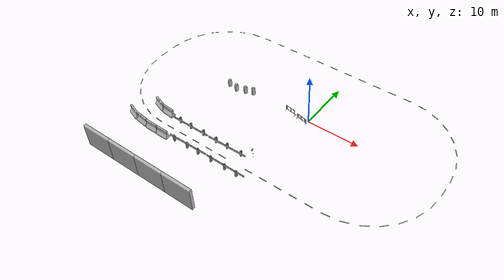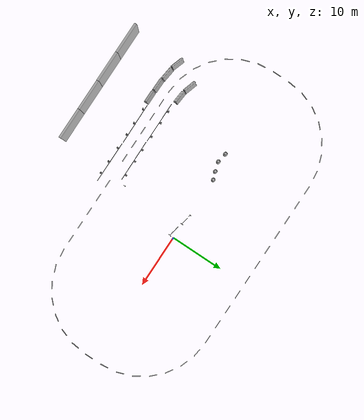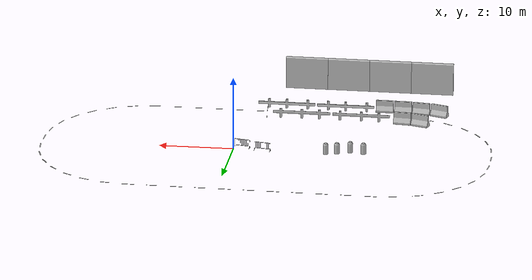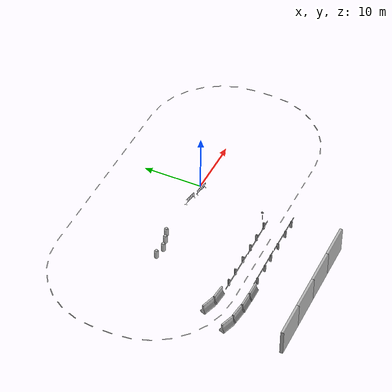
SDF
<sdf version="1.7">
 <world name="default">
  <model name="aws_robomaker_racetrack_CrashworthBucket_01_56">
   <frame name="aws_CrashworthBucket_01::__model__" attached_to="aws_CrashworthBucket_01::body">
    <pose relative_to="__model__">0 0 0 0 -0 0</pose>
   </frame>
   <link name="aws_CrashworthBucket_01::body">
    <pose relative_to="aws_CrashworthBucket_01::__model__">0 0 0 0 -0 0</pose>
    <inertial>
     <mass>5</mass>
     <inertia><ixx>1</ixx><ixy>0</ixy><ixz>0</ixz><iyy>1</iyy><iyz>0</iyz><izz>1</izz></inertia>
    </inertial>
    <visual name="visual">
     <geometry>
      <mesh>
       <uri>file://models/aws_robomaker_racetrack_CrashworthBucket_01/meshes/aws_CrashworthBucket_01_visual.DAE</uri>
      </mesh>
     </geometry>
     <material><shader type="pixel"><normal_map>__default__</normal_map></shader></material>
     <meta><layer>0</layer></meta>
    </visual>
    <collision name="collision_0">
     <geometry>
      <mesh>
       <uri>file://models/aws_robomaker_racetrack_CrashworthBucket_01/meshes/aws_CrashworthBucket_01_collision.DAE</uri>
       <scale>1 1 1</scale>
      </mesh>
     </geometry>
     <surface>
      <friction>
       <ode><mu>1</mu><mu2>1</mu2><fdir1>0 0 0</fdir1><slip1>0</slip1><slip2>0</slip2></ode>
       <torsional>
        <coefficient>1</coefficient>
        <patch_radius>0</patch_radius>
        <surface_radius>0</surface_radius>
        <use_patch_radius>1</use_patch_radius>
        <ode><slip>0</slip></ode>
       </torsional>
      </friction>
      <bounce><restitution_coefficient>0</restitution_coefficient><threshold>1e+06</threshold></bounce>
      <contact>
       <collide_without_contact>0</collide_without_contact>
       <collide_without_contact_bitmask>1</collide_without_contact_bitmask>
       <collide_bitmask>1</collide_bitmask>
       <ode>
        <soft_cfm>0</soft_cfm>
        <soft_erp>0.2</soft_erp>
        <kp>1e+13</kp>
        <kd>1</kd>
        <max_vel>0.01</max_vel>
        <min_depth>0</min_depth>
       </ode>
       <bullet>
        <split_impulse>1</split_impulse>
        <split_impulse_penetration_threshold>-0.01</split_impulse_penetration_threshold>
        <soft_cfm>0</soft_cfm>
        <soft_erp>0.2</soft_erp>
        <kp>1e+13</kp>
        <kd>1</kd>
       </bullet>
      </contact>
     </surface>
    </collision>
   </link>
   <static>1</static>
   <pose>-12.3589 0.164431 0.054 0 -0 0</pose>
  </model>
  <model name="aws_robomaker_racetrack_CrashworthBucket_01_60">
   <frame name="aws_CrashworthBucket_01::__model__" attached_to="aws_CrashworthBucket_01::body">
    <pose relative_to="__model__">0 0 0 0 -0 0</pose>
   </frame>
   <link name="aws_CrashworthBucket_01::body">
    <pose relative_to="aws_CrashworthBucket_01::__model__">0 0 0 0 -0 0</pose>
    <inertial>
     <mass>5</mass>
     <inertia><ixx>1</ixx><ixy>0</ixy><ixz>0</ixz><iyy>1</iyy><iyz>0</iyz><izz>1</izz></inertia>
    </inertial>
    <visual name="visual">
     <geometry>
      <mesh>
       <uri>file://models/aws_robomaker_racetrack_CrashworthBucket_01/meshes/aws_CrashworthBucket_01_visual.DAE</uri>
      </mesh>
     </geometry>
     <material><shader type="pixel"><normal_map>__default__</normal_map></shader></material>
     <meta><layer>0</layer></meta>
    </visual>
    <collision name="collision_0">
     <geometry>
      <mesh>
       <uri>file://models/aws_robomaker_racetrack_CrashworthBucket_01/meshes/aws_CrashworthBucket_01_collision.DAE</uri>
       <scale>1 1 1</scale>
      </mesh>
     </geometry>
     <surface>
      <friction>
       <ode><mu>1</mu><mu2>1</mu2><fdir1>0 0 0</fdir1><slip1>0</slip1><slip2>0</slip2></ode>
       <torsional>
        <coefficient>1</coefficient>
        <patch_radius>0</patch_radius>
        <surface_radius>0</surface_radius>
        <use_patch_radius>1</use_patch_radius>
        <ode><slip>0</slip></ode>
       </torsional>
      </friction>
      <bounce><restitution_coefficient>0</restitution_coefficient><threshold>1e+06</threshold></bounce>
      <contact>
       <collide_without_contact>0</collide_without_contact>
       <collide_without_contact_bitmask>1</collide_without_contact_bitmask>
       <collide_bitmask>1</collide_bitmask>
       <ode>
        <soft_cfm>0</soft_cfm>
        <soft_erp>0.2</soft_erp>
        <kp>1e+13</kp>
        <kd>1</kd>
        <max_vel>0.01</max_vel>
        <min_depth>0</min_depth>
       </ode>
       <bullet>
        <split_impulse>1</split_impulse>
        <split_impulse_penetration_threshold>-0.01</split_impulse_penetration_threshold>
        <soft_cfm>0</soft_cfm>
        <soft_erp>0.2</soft_erp>
        <kp>1e+13</kp>
        <kd>1</kd>
       </bullet>
      </contact>
     </surface>
    </collision>
   </link>
   <static>1</static>
   <pose>-13.795 -0.345202 0 0 -0 0.00632</pose>
  </model>
  <model name="aws_robomaker_racetrack_CrashworthBucket_01_62">
   <frame name="aws_CrashworthBucket_01::__model__" attached_to="aws_CrashworthBucket_01::body">
    <pose relative_to="__model__">0 0 0 0 -0 0</pose>
   </frame>
   <link name="aws_CrashworthBucket_01::body">
    <pose relative_to="aws_CrashworthBucket_01::__model__">0 0 0 0 -0 0</pose>
    <inertial>
     <mass>5</mass>
     <inertia><ixx>1</ixx><ixy>0</ixy><ixz>0</ixz><iyy>1</iyy><iyz>0</iyz><izz>1</izz></inertia>
    </inertial>
    <visual name="visual">
     <geometry>
      <mesh>
       <uri>file://models/aws_robomaker_racetrack_CrashworthBucket_01/meshes/aws_CrashworthBucket_01_visual.DAE</uri>
      </mesh>
     </geometry>
     <material><shader type="pixel"><normal_map>__default__</normal_map></shader></material>
     <meta><layer>0</layer></meta>
    </visual>
    <collision name="collision_0">
     <geometry>
      <mesh>
       <uri>file://models/aws_robomaker_racetrack_CrashworthBucket_01/meshes/aws_CrashworthBucket_01_collision.DAE</uri>
       <scale>1 1 1</scale>
      </mesh>
     </geometry>
     <surface>
      <friction>
       <ode><mu>1</mu><mu2>1</mu2><fdir1>0 0 0</fdir1><slip1>0</slip1><slip2>0</slip2></ode>
       <torsional>
        <coefficient>1</coefficient>
        <patch_radius>0</patch_radius>
        <surface_radius>0</surface_radius>
        <use_patch_radius>1</use_patch_radius>
        <ode><slip>0</slip></ode>
       </torsional>
      </friction>
      <bounce><restitution_coefficient>0</restitution_coefficient><threshold>1e+06</threshold></bounce>
      <contact>
       <collide_without_contact>0</collide_without_contact>
       <collide_without_contact_bitmask>1</collide_without_contact_bitmask>
       <collide_bitmask>1</collide_bitmask>
       <ode>
        <soft_cfm>0</soft_cfm>
        <soft_erp>0.2</soft_erp>
        <kp>1e+13</kp>
        <kd>1</kd>
        <max_vel>0.01</max_vel>
        <min_depth>0</min_depth>
       </ode>
       <bullet>
        <split_impulse>1</split_impulse>
        <split_impulse_penetration_threshold>-0.01</split_impulse_penetration_threshold>
        <soft_cfm>0</soft_cfm>
        <soft_erp>0.2</soft_erp>
        <kp>1e+13</kp>
        <kd>1</kd>
       </bullet>
      </contact>
     </surface>
    </collision>
   </link>
   <static>1</static>
   <pose>-17.3162 -0.564277 0.054 0 -0 0</pose>
  </model>
  <model name="aws_robomaker_racetrack_CrashworthBucket_01_63">
   <frame name="aws_CrashworthBucket_01::__model__" attached_to="aws_CrashworthBucket_01::body">
    <pose relative_to="__model__">0 0 0 0 -0 0</pose>
   </frame>
   <link name="aws_CrashworthBucket_01::body">
    <pose relative_to="aws_CrashworthBucket_01::__model__">0 0 0 0 -0 0</pose>
    <inertial>
     <mass>5</mass>
     <inertia><ixx>1</ixx><ixy>0</ixy><ixz>0</ixz><iyy>1</iyy><iyz>0</iyz><izz>1</izz></inertia>
    </inertial>
    <visual name="visual">
     <geometry>
      <mesh>
       <uri>file://models/aws_robomaker_racetrack_CrashworthBucket_01/meshes/aws_CrashworthBucket_01_visual.DAE</uri>
      </mesh>
     </geometry>
     <material><shader type="pixel"><normal_map>__default__</normal_map></shader></material>
     <meta><layer>0</layer></meta>
    </visual>
    <collision name="collision_0">
     <geometry>
      <mesh>
       <uri>file://models/aws_robomaker_racetrack_CrashworthBucket_01/meshes/aws_CrashworthBucket_01_collision.DAE</uri>
       <scale>1 1 1</scale>
      </mesh>
     </geometry>
     <surface>
      <friction>
       <ode><mu>1</mu><mu2>1</mu2><fdir1>0 0 0</fdir1><slip1>0</slip1><slip2>0</slip2></ode>
       <torsional>
        <coefficient>1</coefficient>
        <patch_radius>0</patch_radius>
        <surface_radius>0</surface_radius>
        <use_patch_radius>1</use_patch_radius>
        <ode><slip>0</slip></ode>
       </torsional>
      </friction>
      <bounce><restitution_coefficient>0</restitution_coefficient><threshold>1e+06</threshold></bounce>
      <contact>
       <collide_without_contact>0</collide_without_contact>
       <collide_without_contact_bitmask>1</collide_without_contact_bitmask>
       <collide_bitmask>1</collide_bitmask>
       <ode>
        <soft_cfm>0</soft_cfm>
        <soft_erp>0.2</soft_erp>
        <kp>1e+13</kp>
        <kd>1</kd>
        <max_vel>0.01</max_vel>
        <min_depth>0</min_depth>
       </ode>
       <bullet>
        <split_impulse>1</split_impulse>
        <split_impulse_penetration_threshold>-0.01</split_impulse_penetration_threshold>
        <soft_cfm>0</soft_cfm>
        <soft_erp>0.2</soft_erp>
        <kp>1e+13</kp>
        <kd>1</kd>
       </bullet>
      </contact>
     </surface>
    </collision>
   </link>
   <static>1</static>
   <pose>-15.5177 -0.852475 0.054 0 -0 0.003001</pose>
  </model>
  <model name="aws_robomaker_racetrack_Fence_01_04">
   <frame name="aws_Fence_01::__model__" attached_to="aws_Fence_01::body">
    <pose relative_to="__model__">0 0 0 0 -0 0</pose>
   </frame>
   <link name="aws_Fence_01::body">
    <pose relative_to="aws_Fence_01::__model__">0 0 0 0 -0 0</pose>
    <inertial>
     <mass>5</mass>
     <inertia><ixx>1</ixx><ixy>0</ixy><ixz>0</ixz><iyy>1</iyy><iyz>0</iyz><izz>1</izz></inertia>
    </inertial>
    <visual name="visual">
     <geometry>
      <mesh><uri>file://models/aws_robomaker_racetrack_Fence_01/meshes/aws_Fence_01_visual.DAE</uri></mesh>
     </geometry>
     <material><shader type="pixel"><normal_map>__default__</normal_map></shader></material>
     <meta><layer>0</layer></meta>
    </visual>
    <collision name="collision_0">
     <geometry>
      <mesh>
       <uri>file://models/aws_robomaker_racetrack_Fence_01/meshes/aws_Fence_01_collision.DAE</uri>
       <scale>1 1 1</scale>
      </mesh>
     </geometry>
     <surface>
      <friction>
       <ode><mu>1</mu><mu2>1</mu2><fdir1>0 0 0</fdir1><slip1>0</slip1><slip2>0</slip2></ode>
       <torsional>
        <coefficient>1</coefficient>
        <patch_radius>0</patch_radius>
        <surface_radius>0</surface_radius>
        <use_patch_radius>1</use_patch_radius>
        <ode><slip>0</slip></ode>
       </torsional>
      </friction>
      <bounce><restitution_coefficient>0</restitution_coefficient><threshold>1e+06</threshold></bounce>
      <contact>
       <collide_without_contact>0</collide_without_contact>
       <collide_without_contact_bitmask>1</collide_without_contact_bitmask>
       <collide_bitmask>1</collide_bitmask>
       <ode>
        <soft_cfm>0</soft_cfm>
        <soft_erp>0.2</soft_erp>
        <kp>1e+13</kp>
        <kd>1</kd>
        <max_vel>0.01</max_vel>
        <min_depth>0</min_depth>
       </ode>
       <bullet>
        <split_impulse>1</split_impulse>
        <split_impulse_penetration_threshold>-0.01</split_impulse_penetration_threshold>
        <soft_cfm>0</soft_cfm>
        <soft_erp>0.2</soft_erp>
        <kp>1e+13</kp>
        <kd>1</kd>
       </bullet>
      </contact>
     </surface>
    </collision>
   </link>
   <static>1</static>
   <pose>-12.9904 -16.8572 0.054 0 0 -1.55861</pose>
  </model>
  <model name="aws_robomaker_racetrack_Fence_01_05">
   <frame name="aws_Fence_01::__model__" attached_to="aws_Fence_01::body">
    <pose relative_to="__model__">0 0 0 0 -0 0</pose>
   </frame>
   <link name="aws_Fence_01::body">
    <pose relative_to="aws_Fence_01::__model__">0 0 0 0 -0 0</pose>
    <inertial>
     <mass>5</mass>
     <inertia><ixx>1</ixx><ixy>0</ixy><ixz>0</ixz><iyy>1</iyy><iyz>0</iyz><izz>1</izz></inertia>
    </inertial>
    <visual name="visual">
     <geometry>
      <mesh><uri>file://models/aws_robomaker_racetrack_Fence_01/meshes/aws_Fence_01_visual.DAE</uri></mesh>
     </geometry>
     <material><shader type="pixel"><normal_map>__default__</normal_map></shader></material>
     <meta><layer>0</layer></meta>
    </visual>
    <collision name="collision_0">
     <geometry>
      <mesh>
       <uri>file://models/aws_robomaker_racetrack_Fence_01/meshes/aws_Fence_01_collision.DAE</uri>
       <scale>1 1 1</scale>
      </mesh>
     </geometry>
     <surface>
      <friction>
       <ode><mu>1</mu><mu2>1</mu2><fdir1>0 0 0</fdir1><slip1>0</slip1><slip2>0</slip2></ode>
       <torsional>
        <coefficient>1</coefficient>
        <patch_radius>0</patch_radius>
        <surface_radius>0</surface_radius>
        <use_patch_radius>1</use_patch_radius>
        <ode><slip>0</slip></ode>
       </torsional>
      </friction>
      <bounce><restitution_coefficient>0</restitution_coefficient><threshold>1e+06</threshold></bounce>
      <contact>
       <collide_without_contact>0</collide_without_contact>
       <collide_without_contact_bitmask>1</collide_without_contact_bitmask>
       <collide_bitmask>1</collide_bitmask>
       <ode>
        <soft_cfm>0</soft_cfm>
        <soft_erp>0.2</soft_erp>
        <kp>1e+13</kp>
        <kd>1</kd>
        <max_vel>0.01</max_vel>
        <min_depth>0</min_depth>
       </ode>
       <bullet>
        <split_impulse>1</split_impulse>
        <split_impulse_penetration_threshold>-0.01</split_impulse_penetration_threshold>
        <soft_cfm>0</soft_cfm>
        <soft_erp>0.2</soft_erp>
        <kp>1e+13</kp>
        <kd>1</kd>
       </bullet>
      </contact>
     </surface>
    </collision>
   </link>
   <static>1</static>
   <pose>-4.88088 -16.8495 0.054 0 0 -1.57272</pose>
  </model>
  <model name="aws_robomaker_racetrack_Fence_01_08">
   <frame name="aws_Fence_01::__model__" attached_to="aws_Fence_01::body">
    <pose relative_to="__model__">0 0 0 0 -0 0</pose>
   </frame>
   <link name="aws_Fence_01::body">
    <pose relative_to="aws_Fence_01::__model__">0 0 0 0 -0 0</pose>
    <inertial>
     <mass>5</mass>
     <inertia><ixx>1</ixx><ixy>0</ixy><ixz>0</ixz><iyy>1</iyy><iyz>0</iyz><izz>1</izz></inertia>
    </inertial>
    <visual name="visual">
     <geometry>
      <mesh><uri>file://models/aws_robomaker_racetrack_Fence_01/meshes/aws_Fence_01_visual.DAE</uri></mesh>
     </geometry>
     <material><shader type="pixel"><normal_map>__default__</normal_map></shader></material>
     <meta><layer>0</layer></meta>
    </visual>
    <collision name="collision_0">
     <geometry>
      <mesh>
       <uri>file://models/aws_robomaker_racetrack_Fence_01/meshes/aws_Fence_01_collision.DAE</uri>
       <scale>1 1 1</scale>
      </mesh>
     </geometry>
     <surface>
      <friction>
       <ode><mu>1</mu><mu2>1</mu2><fdir1>0 0 0</fdir1><slip1>0</slip1><slip2>0</slip2></ode>
       <torsional>
        <coefficient>1</coefficient>
        <patch_radius>0</patch_radius>
        <surface_radius>0</surface_radius>
        <use_patch_radius>1</use_patch_radius>
        <ode><slip>0</slip></ode>
       </torsional>
      </friction>
      <bounce><restitution_coefficient>0</restitution_coefficient><threshold>1e+06</threshold></bounce>
      <contact>
       <collide_without_contact>0</collide_without_contact>
       <collide_without_contact_bitmask>1</collide_without_contact_bitmask>
       <collide_bitmask>1</collide_bitmask>
       <ode>
        <soft_cfm>0</soft_cfm>
        <soft_erp>0.2</soft_erp>
        <kp>1e+13</kp>
        <kd>1</kd>
        <max_vel>0.01</max_vel>
        <min_depth>0</min_depth>
       </ode>
       <bullet>
        <split_impulse>1</split_impulse>
        <split_impulse_penetration_threshold>-0.01</split_impulse_penetration_threshold>
        <soft_cfm>0</soft_cfm>
        <soft_erp>0.2</soft_erp>
        <kp>1e+13</kp>
        <kd>1</kd>
       </bullet>
      </contact>
     </surface>
    </collision>
   </link>
   <static>1</static>
   <pose>-15.529 -13.1346 0.054 0 -0 1.57158</pose>
  </model>
  <model name="aws_robomaker_racetrack_Fence_01_09">
   <frame name="aws_Fence_01::__model__" attached_to="aws_Fence_01::body">
    <pose relative_to="__model__">0 0 0 0 -0 0</pose>
   </frame>
   <link name="aws_Fence_01::body">
    <pose relative_to="aws_Fence_01::__model__">0 0 0 0 -0 0</pose>
    <inertial>
     <mass>5</mass>
     <inertia><ixx>1</ixx><ixy>0</ixy><ixz>0</ixz><iyy>1</iyy><iyz>0</iyz><izz>1</izz></inertia>
    </inertial>
    <visual name="visual">
     <geometry>
      <mesh><uri>file://models/aws_robomaker_racetrack_Fence_01/meshes/aws_Fence_01_visual.DAE</uri></mesh>
     </geometry>
     <material><shader type="pixel"><normal_map>__default__</normal_map></shader></material>
     <meta><layer>0</layer></meta>
    </visual>
    <collision name="collision_0">
     <geometry>
      <mesh>
       <uri>file://models/aws_robomaker_racetrack_Fence_01/meshes/aws_Fence_01_collision.DAE</uri>
       <scale>1 1 1</scale>
      </mesh>
     </geometry>
     <surface>
      <friction>
       <ode><mu>1</mu><mu2>1</mu2><fdir1>0 0 0</fdir1><slip1>0</slip1><slip2>0</slip2></ode>
       <torsional>
        <coefficient>1</coefficient>
        <patch_radius>0</patch_radius>
        <surface_radius>0</surface_radius>
        <use_patch_radius>1</use_patch_radius>
        <ode><slip>0</slip></ode>
       </torsional>
      </friction>
      <bounce><restitution_coefficient>0</restitution_coefficient><threshold>1e+06</threshold></bounce>
      <contact>
       <collide_without_contact>0</collide_without_contact>
       <collide_without_contact_bitmask>1</collide_without_contact_bitmask>
       <collide_bitmask>1</collide_bitmask>
       <ode>
        <soft_cfm>0</soft_cfm>
        <soft_erp>0.2</soft_erp>
        <kp>1e+13</kp>
        <kd>1</kd>
        <max_vel>0.01</max_vel>
        <min_depth>0</min_depth>
       </ode>
       <bullet>
        <split_impulse>1</split_impulse>
        <split_impulse_penetration_threshold>-0.01</split_impulse_penetration_threshold>
        <soft_cfm>0</soft_cfm>
        <soft_erp>0.2</soft_erp>
        <kp>1e+13</kp>
        <kd>1</kd>
       </bullet>
      </contact>
     </surface>
    </collision>
   </link>
   <static>1</static>
   <pose>-7.39105 -13.1346 0.054651 0 -0 1.5804</pose>
  </model>
  <model name="aws_robomaker_racetrack_Fence_02_00">
   <frame name="aws_Fence_02::__model__" attached_to="aws_Fence_02::body">
    <pose relative_to="__model__">0 0 0 0 -0 0</pose>
   </frame>
   <link name="aws_Fence_02::body">
    <pose relative_to="aws_Fence_02::__model__">0 0 0 0 -0 0</pose>
    <inertial>
     <mass>5</mass>
     <inertia><ixx>9.6</ixx><ixy>0</ixy><ixz>0</ixz><iyy>8.2</iyy><iyz>0</iyz><izz>2.1</izz></inertia>
    </inertial>
    <visual name="visual">
     <geometry>
      <mesh><uri>file://models/aws_robomaker_racetrack_Fence_02/meshes/aws_Fence_02_visual.DAE</uri></mesh>
     </geometry>
     <material><shader type="pixel"><normal_map>__default__</normal_map></shader></material>
     <meta><layer>0</layer></meta>
    </visual>
    <collision name="collision_0">
     <geometry>
      <mesh>
       <uri>file://models/aws_robomaker_racetrack_Fence_02/meshes/aws_Fence_02_collision.DAE</uri>
       <scale>1 1 1</scale>
      </mesh>
     </geometry>
     <surface>
      <friction>
       <ode><mu>1</mu><mu2>1</mu2><fdir1>0 0 0</fdir1><slip1>0</slip1><slip2>0</slip2></ode>
       <torsional>
        <coefficient>1</coefficient>
        <patch_radius>0</patch_radius>
        <surface_radius>0</surface_radius>
        <use_patch_radius>1</use_patch_radius>
        <ode><slip>0</slip></ode>
       </torsional>
      </friction>
      <bounce><restitution_coefficient>0</restitution_coefficient><threshold>1e+06</threshold></bounce>
      <contact>
       <collide_without_contact>0</collide_without_contact>
       <collide_without_contact_bitmask>1</collide_without_contact_bitmask>
       <collide_bitmask>1</collide_bitmask>
      </contact>
     </surface>
    </collision>
   </link>
   <static>1</static>
   <pose>-1.05264 -0.5238 0.040535 -0.008781 0.086261 -1.77545</pose>
  </model>
  <model name="aws_robomaker_racetrack_Fence_02_02">
   <frame name="aws_Fence_02::__model__" attached_to="aws_Fence_02::body">
    <pose relative_to="__model__">0 0 0 0 -0 0</pose>
   </frame>
   <link name="aws_Fence_02::body">
    <pose relative_to="aws_Fence_02::__model__">0 0 0 0 -0 0</pose>
    <inertial>
     <mass>5</mass>
     <inertia><ixx>9.6</ixx><ixy>0</ixy><ixz>0</ixz><iyy>8.2</iyy><iyz>0</iyz><izz>2.1</izz></inertia>
    </inertial>
    <visual name="visual">
     <geometry>
      <mesh><uri>file://models/aws_robomaker_racetrack_Fence_02/meshes/aws_Fence_02_visual.DAE</uri></mesh>
     </geometry>
     <material><shader type="pixel"><normal_map>__default__</normal_map></shader></material>
     <meta><layer>0</layer></meta>
    </visual>
    <collision name="collision_0">
     <geometry>
      <mesh>
       <uri>file://models/aws_robomaker_racetrack_Fence_02/meshes/aws_Fence_02_collision.DAE</uri>
       <scale>1 1 1</scale>
      </mesh>
     </geometry>
     <surface>
      <friction>
       <ode><mu>1</mu><mu2>1</mu2><fdir1>0 0 0</fdir1><slip1>0</slip1><slip2>0</slip2></ode>
       <torsional>
        <coefficient>1</coefficient>
        <patch_radius>0</patch_radius>
        <surface_radius>0</surface_radius>
        <use_patch_radius>1</use_patch_radius>
        <ode><slip>0</slip></ode>
       </torsional>
      </friction>
      <bounce><restitution_coefficient>0</restitution_coefficient><threshold>1e+06</threshold></bounce>
      <contact>
       <collide_without_contact>0</collide_without_contact>
       <collide_without_contact_bitmask>1</collide_without_contact_bitmask>
       <collide_bitmask>1</collide_bitmask>
      </contact>
     </surface>
    </collision>
   </link>
   <static>1</static>
   <pose>-3.88076 0.08215 0 0 0 -1.73608</pose>
  </model>
  <model name="aws_robomaker_racetrack_StonePier_01_00">
   <frame name="aws_StonePier_01::__model__" attached_to="aws_StonePier_01::body">
    <pose relative_to="__model__">0 0 0 0 -0 0</pose>
   </frame>
   <link name="aws_StonePier_01::body">
    <pose relative_to="aws_StonePier_01::__model__">0 0 0 0 -0 0</pose>
    <inertial>
     <mass>10</mass>
     <inertia><ixx>0</ixx><ixy>0</ixy><ixz>0</ixz><iyy>0</iyy><iyz>0</iyz><izz>0</izz></inertia>
    </inertial>
    <visual name="visual">
     <geometry>
      <mesh><uri>file://models/aws_robomaker_racetrack_StonePier_01/meshes/aws_StonePier_01_visual.DAE</uri></mesh>
     </geometry>
     <material><shader type="pixel"><normal_map>__default__</normal_map></shader></material>
     <meta><layer>0</layer></meta>
    </visual>
    <collision name="collision_0">
     <geometry>
      <mesh>
       <uri>file://models/aws_robomaker_racetrack_StonePier_01/meshes/aws_StonePier_01_collision.DAE</uri>
       <scale>1 1 1</scale>
      </mesh>
     </geometry>
     <surface>
      <friction>
       <ode><mu>1</mu><mu2>1</mu2><fdir1>0 0 0</fdir1><slip1>0</slip1><slip2>0</slip2></ode>
       <torsional>
        <coefficient>1</coefficient>
        <patch_radius>0</patch_radius>
        <surface_radius>0</surface_radius>
        <use_patch_radius>1</use_patch_radius>
        <ode><slip>0</slip></ode>
       </torsional>
      </friction>
      <bounce><restitution_coefficient>0</restitution_coefficient><threshold>1e+06</threshold></bounce>
      <contact>
       <collide_without_contact>0</collide_without_contact>
       <collide_without_contact_bitmask>1</collide_without_contact_bitmask>
       <collide_bitmask>1</collide_bitmask>
       <ode>
        <soft_cfm>0</soft_cfm>
        <soft_erp>0.2</soft_erp>
        <kp>1e+13</kp>
        <kd>1</kd>
        <max_vel>0.01</max_vel>
        <min_depth>0</min_depth>
       </ode>
       <bullet>
        <split_impulse>1</split_impulse>
        <split_impulse_penetration_threshold>-0.01</split_impulse_penetration_threshold>
        <soft_cfm>0</soft_cfm>
        <soft_erp>0.2</soft_erp>
        <kp>1e+13</kp>
        <kd>1</kd>
       </bullet>
      </contact>
     </surface>
    </collision>
   </link>
   <static>1</static>
   <pose>-21.1732 -12.7799 0.054 0 0 -0.086667</pose>
  </model>
  <model name="aws_robomaker_racetrack_StonePier_01_01">
   <frame name="aws_StonePier_01::__model__" attached_to="aws_StonePier_01::body">
    <pose relative_to="__model__">0 0 0 0 -0 0</pose>
   </frame>
   <link name="aws_StonePier_01::body">
    <pose relative_to="aws_StonePier_01::__model__">0 0 0 0 -0 0</pose>
    <inertial>
     <mass>10</mass>
     <inertia><ixx>0</ixx><ixy>0</ixy><ixz>0</ixz><iyy>0</iyy><iyz>0</iyz><izz>0</izz></inertia>
    </inertial>
    <visual name="visual">
     <geometry>
      <mesh><uri>file://models/aws_robomaker_racetrack_StonePier_01/meshes/aws_StonePier_01_visual.DAE</uri></mesh>
     </geometry>
     <material><shader type="pixel"><normal_map>__default__</normal_map></shader></material>
     <meta><layer>0</layer></meta>
    </visual>
    <collision name="collision_0">
     <geometry>
      <mesh>
       <uri>file://models/aws_robomaker_racetrack_StonePier_01/meshes/aws_StonePier_01_collision.DAE</uri>
       <scale>1 1 1</scale>
      </mesh>
     </geometry>
     <surface>
      <friction>
       <ode><mu>1</mu><mu2>1</mu2><fdir1>0 0 0</fdir1><slip1>0</slip1><slip2>0</slip2></ode>
       <torsional>
        <coefficient>1</coefficient>
        <patch_radius>0</patch_radius>
        <surface_radius>0</surface_radius>
        <use_patch_radius>1</use_patch_radius>
        <ode><slip>0</slip></ode>
       </torsional>
      </friction>
      <bounce><restitution_coefficient>0</restitution_coefficient><threshold>1e+06</threshold></bounce>
      <contact>
       <collide_without_contact>0</collide_without_contact>
       <collide_without_contact_bitmask>1</collide_without_contact_bitmask>
       <collide_bitmask>1</collide_bitmask>
       <ode>
        <soft_cfm>0</soft_cfm>
        <soft_erp>0.2</soft_erp>
        <kp>1e+13</kp>
        <kd>1</kd>
        <max_vel>0.01</max_vel>
        <min_depth>0</min_depth>
       </ode>
       <bullet>
        <split_impulse>1</split_impulse>
        <split_impulse_penetration_threshold>-0.01</split_impulse_penetration_threshold>
        <soft_cfm>0</soft_cfm>
        <soft_erp>0.2</soft_erp>
        <kp>1e+13</kp>
        <kd>1</kd>
       </bullet>
      </contact>
     </surface>
    </collision>
   </link>
   <static>1</static>
   <pose>-23.6727 -12.2854 0.054 0 0 -0.301631</pose>
  </model>
  <model name="aws_robomaker_racetrack_StonePier_01_40">
   <frame name="aws_StonePier_01::__model__" attached_to="aws_StonePier_01::body">
    <pose relative_to="__model__">0 0 0 0 -0 0</pose>
   </frame>
   <link name="aws_StonePier_01::body">
    <pose relative_to="aws_StonePier_01::__model__">0 0 0 0 -0 0</pose>
    <inertial>
     <mass>10</mass>
     <inertia><ixx>0</ixx><ixy>0</ixy><ixz>0</ixz><iyy>0</iyy><iyz>0</iyz><izz>0</izz></inertia>
    </inertial>
    <visual name="visual">
     <geometry>
      <mesh><uri>file://models/aws_robomaker_racetrack_StonePier_01/meshes/aws_StonePier_01_visual.DAE</uri></mesh>
     </geometry>
     <material><shader type="pixel"><normal_map>__default__</normal_map></shader></material>
     <meta><layer>0</layer></meta>
    </visual>
    <collision name="collision_0">
     <geometry>
      <mesh>
       <uri>file://models/aws_robomaker_racetrack_StonePier_01/meshes/aws_StonePier_01_collision.DAE</uri>
       <scale>1 1 1</scale>
      </mesh>
     </geometry>
     <surface>
      <friction>
       <ode><mu>1</mu><mu2>1</mu2><fdir1>0 0 0</fdir1><slip1>0</slip1><slip2>0</slip2></ode>
       <torsional>
        <coefficient>1</coefficient>
        <patch_radius>0</patch_radius>
        <surface_radius>0</surface_radius>
        <use_patch_radius>1</use_patch_radius>
        <ode><slip>0</slip></ode>
       </torsional>
      </friction>
      <bounce><restitution_coefficient>0</restitution_coefficient><threshold>1e+06</threshold></bounce>
      <contact>
       <collide_without_contact>0</collide_without_contact>
       <collide_without_contact_bitmask>1</collide_without_contact_bitmask>
       <collide_bitmask>1</collide_bitmask>
       <ode>
        <soft_cfm>0</soft_cfm>
        <soft_erp>0.2</soft_erp>
        <kp>1e+13</kp>
        <kd>1</kd>
        <max_vel>0.01</max_vel>
        <min_depth>0</min_depth>
       </ode>
       <bullet>
        <split_impulse>1</split_impulse>
        <split_impulse_penetration_threshold>-0.01</split_impulse_penetration_threshold>
        <soft_cfm>0</soft_cfm>
        <soft_erp>0.2</soft_erp>
        <kp>1e+13</kp>
        <kd>1</kd>
       </bullet>
      </contact>
     </surface>
    </collision>
   </link>
   <static>1</static>
   <pose>-18.3212 -17.1986 0.054 0 0 -0.000165</pose>
  </model>
  <model name="aws_robomaker_racetrack_StonePier_01_68">
   <frame name="aws_StonePier_01::__model__" attached_to="aws_StonePier_01::body">
    <pose relative_to="__model__">0 0 0 0 -0 0</pose>
   </frame>
   <link name="aws_StonePier_01::body">
    <pose relative_to="aws_StonePier_01::__model__">0 0 0 0 -0 0</pose>
    <inertial>
     <mass>10</mass>
     <inertia><ixx>0</ixx><ixy>0</ixy><ixz>0</ixz><iyy>0</iyy><iyz>0</iyz><izz>0</izz></inertia>
    </inertial>
    <visual name="visual">
     <geometry>
      <mesh><uri>file://models/aws_robomaker_racetrack_StonePier_01/meshes/aws_StonePier_01_visual.DAE</uri></mesh>
     </geometry>
     <material><shader type="pixel"><normal_map>__default__</normal_map></shader></material>
     <meta><layer>0</layer></meta>
    </visual>
    <collision name="collision_0">
     <geometry>
      <mesh>
       <uri>file://models/aws_robomaker_racetrack_StonePier_01/meshes/aws_StonePier_01_collision.DAE</uri>
       <scale>1 1 1</scale>
      </mesh>
     </geometry>
     <surface>
      <friction>
       <ode><mu>1</mu><mu2>1</mu2><fdir1>0 0 0</fdir1><slip1>0</slip1><slip2>0</slip2></ode>
       <torsional>
        <coefficient>1</coefficient>
        <patch_radius>0</patch_radius>
        <surface_radius>0</surface_radius>
        <use_patch_radius>1</use_patch_radius>
        <ode><slip>0</slip></ode>
       </torsional>
      </friction>
      <bounce><restitution_coefficient>0</restitution_coefficient><threshold>1e+06</threshold></bounce>
      <contact>
       <collide_without_contact>0</collide_without_contact>
       <collide_without_contact_bitmask>1</collide_without_contact_bitmask>
       <collide_bitmask>1</collide_bitmask>
       <ode>
        <soft_cfm>0</soft_cfm>
        <soft_erp>0.2</soft_erp>
        <kp>1e+13</kp>
        <kd>1</kd>
        <max_vel>0.01</max_vel>
        <min_depth>0</min_depth>
       </ode>
       <bullet>
        <split_impulse>1</split_impulse>
        <split_impulse_penetration_threshold>-0.01</split_impulse_penetration_threshold>
        <soft_cfm>0</soft_cfm>
        <soft_erp>0.2</soft_erp>
        <kp>1e+13</kp>
        <kd>1</kd>
       </bullet>
      </contact>
     </surface>
    </collision>
   </link>
   <static>1</static>
   <pose>-20.8526 -17.1365 0.054 -0 0.00036 -0.016586</pose>
  </model>
  <model name="aws_robomaker_racetrack_StonePier_01_69">
   <frame name="aws_StonePier_01::__model__" attached_to="aws_StonePier_01::body">
    <pose relative_to="__model__">0 0 0 0 -0 0</pose>
   </frame>
   <link name="aws_StonePier_01::body">
    <pose relative_to="aws_StonePier_01::__model__">0 0 0 0 -0 0</pose>
    <inertial>
     <mass>10</mass>
     <inertia><ixx>0</ixx><ixy>0</ixy><ixz>0</ixz><iyy>0</iyy><iyz>0</iyz><izz>0</izz></inertia>
    </inertial>
    <visual name="visual">
     <geometry>
      <mesh><uri>file://models/aws_robomaker_racetrack_StonePier_01/meshes/aws_StonePier_01_visual.DAE</uri></mesh>
     </geometry>
     <material><shader type="pixel"><normal_map>__default__</normal_map></shader></material>
     <meta><layer>0</layer></meta>
    </visual>
    <collision name="collision_0">
     <geometry>
      <mesh>
       <uri>file://models/aws_robomaker_racetrack_StonePier_01/meshes/aws_StonePier_01_collision.DAE</uri>
       <scale>1 1 1</scale>
      </mesh>
     </geometry>
     <surface>
      <friction>
       <ode><mu>1</mu><mu2>1</mu2><fdir1>0 0 0</fdir1><slip1>0</slip1><slip2>0</slip2></ode>
       <torsional>
        <coefficient>1</coefficient>
        <patch_radius>0</patch_radius>
        <surface_radius>0</surface_radius>
        <use_patch_radius>1</use_patch_radius>
        <ode><slip>0</slip></ode>
       </torsional>
      </friction>
      <bounce><restitution_coefficient>0</restitution_coefficient><threshold>1e+06</threshold></bounce>
      <contact>
       <collide_without_contact>0</collide_without_contact>
       <collide_without_contact_bitmask>1</collide_without_contact_bitmask>
       <collide_bitmask>1</collide_bitmask>
       <ode>
        <soft_cfm>0</soft_cfm>
        <soft_erp>0.2</soft_erp>
        <kp>1e+13</kp>
        <kd>1</kd>
        <max_vel>0.01</max_vel>
        <min_depth>0</min_depth>
       </ode>
       <bullet>
        <split_impulse>1</split_impulse>
        <split_impulse_penetration_threshold>-0.01</split_impulse_penetration_threshold>
        <soft_cfm>0</soft_cfm>
        <soft_erp>0.2</soft_erp>
        <kp>1e+13</kp>
        <kd>1</kd>
       </bullet>
      </contact>
     </surface>
    </collision>
   </link>
   <static>1</static>
   <pose>-23.3756 -16.9024 0.054 0 0 -0.119704</pose>
  </model>
  <model name="aws_robomaker_racetrack_StonePier_01_70">
   <frame name="aws_StonePier_01::__model__" attached_to="aws_StonePier_01::body">
    <pose relative_to="__model__">0 0 0 0 -0 0</pose>
   </frame>
   <link name="aws_StonePier_01::body">
    <pose relative_to="aws_StonePier_01::__model__">0 0 0 0 -0 0</pose>
    <inertial>
     <mass>10</mass>
     <inertia><ixx>0</ixx><ixy>0</ixy><ixz>0</ixz><iyy>0</iyy><iyz>0</iyz><izz>0</izz></inertia>
    </inertial>
    <visual name="visual">
     <geometry>
      <mesh><uri>file://models/aws_robomaker_racetrack_StonePier_01/meshes/aws_StonePier_01_visual.DAE</uri></mesh>
     </geometry>
     <material><shader type="pixel"><normal_map>__default__</normal_map></shader></material>
     <meta><layer>0</layer></meta>
    </visual>
    <collision name="collision_0">
     <geometry>
      <mesh>
       <uri>file://models/aws_robomaker_racetrack_StonePier_01/meshes/aws_StonePier_01_collision.DAE</uri>
       <scale>1 1 1</scale>
      </mesh>
     </geometry>
     <surface>
      <friction>
       <ode><mu>1</mu><mu2>1</mu2><fdir1>0 0 0</fdir1><slip1>0</slip1><slip2>0</slip2></ode>
       <torsional>
        <coefficient>1</coefficient>
        <patch_radius>0</patch_radius>
        <surface_radius>0</surface_radius>
        <use_patch_radius>1</use_patch_radius>
        <ode><slip>0</slip></ode>
       </torsional>
      </friction>
      <bounce><restitution_coefficient>0</restitution_coefficient><threshold>1e+06</threshold></bounce>
      <contact>
       <collide_without_contact>0</collide_without_contact>
       <collide_without_contact_bitmask>1</collide_without_contact_bitmask>
       <collide_bitmask>1</collide_bitmask>
       <ode>
        <soft_cfm>0</soft_cfm>
        <soft_erp>0.2</soft_erp>
        <kp>1e+13</kp>
        <kd>1</kd>
        <max_vel>0.01</max_vel>
        <min_depth>0</min_depth>
       </ode>
       <bullet>
        <split_impulse>1</split_impulse>
        <split_impulse_penetration_threshold>-0.01</split_impulse_penetration_threshold>
        <soft_cfm>0</soft_cfm>
        <soft_erp>0.2</soft_erp>
        <kp>1e+13</kp>
        <kd>1</kd>
       </bullet>
      </contact>
     </surface>
    </collision>
   </link>
   <static>1</static>
   <pose>-25.8909 -16.4126 0.054 0 0 -0.32217</pose>
  </model>
  <model name="aws_robomaker_racetrack_StopSign_01_00">
   <frame name="aws_StopSign_01::__model__" attached_to="aws_StopSign_01::body">
    <pose relative_to="__model__">0 0 0 0 -0 0</pose>
   </frame>
   <link name="aws_StopSign_01::body">
    <pose relative_to="aws_StopSign_01::__model__">0 0 0 0 -0 0</pose>
    <inertial>
     <mass>2</mass>
     <inertia><ixx>1</ixx><ixy>0</ixy><ixz>0</ixz><iyy>1</iyy><iyz>0</iyz><izz>1</izz></inertia>
    </inertial>
    <visual name="visual">
     <geometry>
      <mesh><uri>file://models/aws_robomaker_racetrack_StopSign_01/meshes/aws_StopSign_01_visual.DAE</uri></mesh>
     </geometry>
     <material><shader type="pixel"><normal_map>__default__</normal_map></shader></material>
     <meta><layer>0</layer></meta>
    </visual>
    <collision name="collision_0">
     <geometry>
      <mesh>
       <uri>file://models/aws_robomaker_racetrack_StopSign_01/meshes/aws_StopSign_01_collision.DAE</uri>
       <scale>1 1 1</scale>
      </mesh>
     </geometry>
     <surface>
      <friction>
       <ode><mu>1</mu><mu2>1</mu2><fdir1>0 0 0</fdir1><slip1>0</slip1><slip2>0</slip2></ode>
       <torsional>
        <coefficient>1</coefficient>
        <patch_radius>0</patch_radius>
        <surface_radius>0</surface_radius>
        <use_patch_radius>1</use_patch_radius>
        <ode><slip>0</slip></ode>
       </torsional>
      </friction>
      <bounce><restitution_coefficient>0</restitution_coefficient><threshold>1e+06</threshold></bounce>
      <contact>
       <collide_without_contact>0</collide_without_contact>
       <collide_without_contact_bitmask>1</collide_without_contact_bitmask>
       <collide_bitmask>1</collide_bitmask>
       <ode>
        <soft_cfm>0</soft_cfm>
        <soft_erp>0.2</soft_erp>
        <kp>1e+13</kp>
        <kd>1</kd>
        <max_vel>0.01</max_vel>
        <min_depth>0</min_depth>
       </ode>
       <bullet>
        <split_impulse>1</split_impulse>
        <split_impulse_penetration_threshold>-0.01</split_impulse_penetration_threshold>
        <soft_cfm>0</soft_cfm>
        <soft_erp>0.2</soft_erp>
        <kp>1e+13</kp>
        <kd>1</kd>
       </bullet>
      </contact>
     </surface>
    </collision>
   </link>
   <static>1</static>
   <pose>-2.7487 -12.1054 0.000775 0.075944 0.005053 -1.56731</pose>
  </model>
  <model name="aws_robomaker_racetrack_Trackline_01_00">
   <frame name="aws_Trackline_01::__model__" attached_to="aws_Trackline_01::body">
    <pose relative_to="__model__">0 0 0 0 -0 0</pose>
   </frame>
   <link name="aws_Trackline_01::body">
    <pose relative_to="aws_Trackline_01::__model__">0 0 0 0 -0 0</pose>
    <inertial>
     <mass>0.5</mass>
     <inertia><ixx>1</ixx><ixy>0</ixy><ixz>0</ixz><iyy>1</iyy><iyz>0</iyz><izz>1</izz></inertia>
    </inertial>
    <visual name="visual">
     <geometry>
      <mesh><uri>file://models/aws_robomaker_racetrack_Trackline_01/meshes/aws_Trackline_01_visual.DAE</uri></mesh>
     </geometry>
     <material><shader type="pixel"><normal_map>__default__</normal_map></shader></material>
     <meta><layer>0</layer></meta>
    </visual>
    <collision name="collision_0">
     <geometry>
      <mesh>
       <uri>file://models/aws_robomaker_racetrack_Trackline_01/meshes/aws_Trackline_01_collision.DAE</uri>
       <scale>1 1 1</scale>
      </mesh>
     </geometry>
     <surface>
      <friction>
       <ode><mu>1</mu><mu2>1</mu2><fdir1>0 0 0</fdir1><slip1>0</slip1><slip2>0</slip2></ode>
       <torsional>
        <coefficient>1</coefficient>
        <patch_radius>0</patch_radius>
        <surface_radius>0</surface_radius>
        <use_patch_radius>1</use_patch_radius>
        <ode><slip>0</slip></ode>
       </torsional>
      </friction>
      <bounce><restitution_coefficient>0</restitution_coefficient><threshold>1e+06</threshold></bounce>
      <contact>
       <collide_without_contact>0</collide_without_contact>
       <collide_without_contact_bitmask>1</collide_without_contact_bitmask>
       <collide_bitmask>0</collide_bitmask>
       <ode>
        <soft_cfm>0</soft_cfm>
        <soft_erp>0.2</soft_erp>
        <kp>1e+13</kp>
        <kd>1</kd>
        <max_vel>0.01</max_vel>
        <min_depth>0</min_depth>
       </ode>
       <bullet>
        <split_impulse>1</split_impulse>
        <split_impulse_penetration_threshold>-0.01</split_impulse_penetration_threshold>
        <soft_cfm>0</soft_cfm>
        <soft_erp>0.2</soft_erp>
        <kp>1e+13</kp>
        <kd>1</kd>
       </bullet>
      </contact>
     </surface>
    </collision>
   </link>
   <static>1</static>
   <pose>-4.24539 0 0.102 0 -0 0</pose>
  </model>
  <model name="aws_robomaker_racetrack_Wall_01_11">
   <frame name="aws_Wall_01::__model__" attached_to="aws_Wall_01::body">
    <pose relative_to="__model__">0 0 0 0 -0 0</pose>
   </frame>
   <link name="aws_Wall_01::body">
    <pose relative_to="aws_Wall_01::__model__">0 0 0 0 -0 0</pose>
    <inertial>
     <mass>500</mass>
     <inertia><ixx>1</ixx><ixy>0</ixy><ixz>0</ixz><iyy>1</iyy><iyz>0</iyz><izz>1</izz></inertia>
    </inertial>
    <visual name="visual">
     <geometry>
      <mesh>
       <uri>file://models/aws_robomaker_racetrack_Wall_01/meshes/aws_Wall_01_visual.DAE</uri>
       <scale>2.59853 2.59853 2.59853</scale>
      </mesh>
     </geometry>
     <material><shader type="pixel"><normal_map>__default__</normal_map></shader></material>
     <meta><layer>1</layer></meta>
    </visual>
    <collision name="collision_0">
     <geometry>
      <mesh>
       <uri>file://models/aws_robomaker_racetrack_Wall_01/meshes/aws_Wall_01_collision.DAE</uri>
       <scale>2.59853 2.59853 2.59853</scale>
      </mesh>
     </geometry>
     <surface>
      <friction>
       <ode><mu>1</mu><mu2>1</mu2><fdir1>0 0 0</fdir1><slip1>0</slip1><slip2>0</slip2></ode>
       <torsional>
        <coefficient>1</coefficient>
        <patch_radius>0</patch_radius>
        <surface_radius>0</surface_radius>
        <use_patch_radius>1</use_patch_radius>
        <ode><slip>0</slip></ode>
       </torsional>
      </friction>
      <bounce><restitution_coefficient>0</restitution_coefficient><threshold>1e+06</threshold></bounce>
      <contact>
       <collide_without_contact>0</collide_without_contact>
       <collide_without_contact_bitmask>1</collide_without_contact_bitmask>
       <collide_bitmask>1</collide_bitmask>
       <ode>
        <soft_cfm>0</soft_cfm>
        <soft_erp>0.2</soft_erp>
        <kp>1e+13</kp>
        <kd>1</kd>
        <max_vel>0.01</max_vel>
        <min_depth>0</min_depth>
       </ode>
       <bullet>
        <split_impulse>1</split_impulse>
        <split_impulse_penetration_threshold>-0.01</split_impulse_penetration_threshold>
        <soft_cfm>0</soft_cfm>
        <soft_erp>0.2</soft_erp>
        <kp>1e+13</kp>
        <kd>1</kd>
       </bullet>
      </contact>
     </surface>
    </collision>
   </link>
   <static>1</static>
   <pose>-23.9919 -25.5182 0 0 -0 0</pose>
  </model>
  <model name="aws_robomaker_racetrack_Wall_01_12">
   <frame name="aws_Wall_01::__model__" attached_to="aws_Wall_01::body">
    <pose relative_to="__model__">0 0 0 0 -0 0</pose>
   </frame>
   <link name="aws_Wall_01::body">
    <pose relative_to="aws_Wall_01::__model__">0 0 0 0 -0 0</pose>
    <inertial>
     <mass>500</mass>
     <inertia><ixx>1</ixx><ixy>0</ixy><ixz>0</ixz><iyy>1</iyy><iyz>0</iyz><izz>1</izz></inertia>
    </inertial>
    <visual name="visual">
     <geometry>
      <mesh>
       <uri>file://models/aws_robomaker_racetrack_Wall_01/meshes/aws_Wall_01_visual.DAE</uri>
       <scale>2.59853 2.59853 2.59853</scale>
      </mesh>
     </geometry>
     <material><shader type="pixel"><normal_map>__default__</normal_map></shader></material>
     <meta><layer>1</layer></meta>
    </visual>
    <collision name="collision_0">
     <geometry>
      <mesh>
       <uri>file://models/aws_robomaker_racetrack_Wall_01/meshes/aws_Wall_01_collision.DAE</uri>
       <scale>2.59853 2.59853 2.59853</scale>
      </mesh>
     </geometry>
     <surface>
      <friction>
       <ode><mu>1</mu><mu2>1</mu2><fdir1>0 0 0</fdir1><slip1>0</slip1><slip2>0</slip2></ode>
       <torsional>
        <coefficient>1</coefficient>
        <patch_radius>0</patch_radius>
        <surface_radius>0</surface_radius>
        <use_patch_radius>1</use_patch_radius>
        <ode><slip>0</slip></ode>
       </torsional>
      </friction>
      <bounce><restitution_coefficient>0</restitution_coefficient><threshold>1e+06</threshold></bounce>
      <contact>
       <collide_without_contact>0</collide_without_contact>
       <collide_without_contact_bitmask>1</collide_without_contact_bitmask>
       <collide_bitmask>1</collide_bitmask>
       <ode>
        <soft_cfm>0</soft_cfm>
        <soft_erp>0.2</soft_erp>
        <kp>1e+13</kp>
        <kd>1</kd>
        <max_vel>0.01</max_vel>
        <min_depth>0</min_depth>
       </ode>
       <bullet>
        <split_impulse>1</split_impulse>
        <split_impulse_penetration_threshold>-0.01</split_impulse_penetration_threshold>
        <soft_cfm>0</soft_cfm>
        <soft_erp>0.2</soft_erp>
        <kp>1e+13</kp>
        <kd>1</kd>
       </bullet>
      </contact>
     </surface>
    </collision>
   </link>
   <static>1</static>
   <pose>-18.1656 -25.5178 0 0 -0 0</pose>
  </model>
  <model name="aws_robomaker_racetrack_Wall_01_13">
   <frame name="aws_Wall_01::__model__" attached_to="aws_Wall_01::body">
    <pose relative_to="__model__">0 0 0 0 -0 0</pose>
   </frame>
   <link name="aws_Wall_01::body">
    <pose relative_to="aws_Wall_01::__model__">0 0 0 0 -0 0</pose>
    <inertial>
     <mass>500</mass>
     <inertia><ixx>1</ixx><ixy>0</ixy><ixz>0</ixz><iyy>1</iyy><iyz>0</iyz><izz>1</izz></inertia>
    </inertial>
    <visual name="visual">
     <geometry>
      <mesh>
       <uri>file://models/aws_robomaker_racetrack_Wall_01/meshes/aws_Wall_01_visual.DAE</uri>
       <scale>2.59853 2.59853 2.59853</scale>
      </mesh>
     </geometry>
     <material><shader type="pixel"><normal_map>__default__</normal_map></shader></material>
     <meta><layer>1</layer></meta>
    </visual>
    <collision name="collision_0">
     <geometry>
      <mesh>
       <uri>file://models/aws_robomaker_racetrack_Wall_01/meshes/aws_Wall_01_collision.DAE</uri>
       <scale>2.59853 2.59853 2.59853</scale>
      </mesh>
     </geometry>
     <surface>
      <friction>
       <ode><mu>1</mu><mu2>1</mu2><fdir1>0 0 0</fdir1><slip1>0</slip1><slip2>0</slip2></ode>
       <torsional>
        <coefficient>1</coefficient>
        <patch_radius>0</patch_radius>
        <surface_radius>0</surface_radius>
        <use_patch_radius>1</use_patch_radius>
        <ode><slip>0</slip></ode>
       </torsional>
      </friction>
      <bounce><restitution_coefficient>0</restitution_coefficient><threshold>1e+06</threshold></bounce>
      <contact>
       <collide_without_contact>0</collide_without_contact>
       <collide_without_contact_bitmask>1</collide_without_contact_bitmask>
       <collide_bitmask>1</collide_bitmask>
       <ode>
        <soft_cfm>0</soft_cfm>
        <soft_erp>0.2</soft_erp>
        <kp>1e+13</kp>
        <kd>1</kd>
        <max_vel>0.01</max_vel>
        <min_depth>0</min_depth>
       </ode>
       <bullet>
        <split_impulse>1</split_impulse>
        <split_impulse_penetration_threshold>-0.01</split_impulse_penetration_threshold>
        <soft_cfm>0</soft_cfm>
        <soft_erp>0.2</soft_erp>
        <kp>1e+13</kp>
        <kd>1</kd>
       </bullet>
      </contact>
     </surface>
    </collision>
   </link>
   <static>1</static>
   <pose>-12.3608 -25.513 0 0 -0 0</pose>
  </model>
  <model name="aws_robomaker_racetrack_Wall_01_14">
   <frame name="aws_Wall_01::__model__" attached_to="aws_Wall_01::body">
    <pose relative_to="__model__">0 0 0 0 -0 0</pose>
   </frame>
   <link name="aws_Wall_01::body">
    <pose relative_to="aws_Wall_01::__model__">0 0 0 0 -0 0</pose>
    <inertial>
     <mass>500</mass>
     <inertia><ixx>1</ixx><ixy>0</ixy><ixz>0</ixz><iyy>1</iyy><iyz>0</iyz><izz>1</izz></inertia>
    </inertial>
    <visual name="visual">
     <geometry>
      <mesh>
       <uri>file://models/aws_robomaker_racetrack_Wall_01/meshes/aws_Wall_01_visual.DAE</uri>
       <scale>2.59853 2.59853 2.59853</scale>
      </mesh>
     </geometry>
     <material><shader type="pixel"><normal_map>__default__</normal_map></shader></material>
     <meta><layer>1</layer></meta>
    </visual>
    <collision name="collision_0">
     <geometry>
      <mesh>
       <uri>file://models/aws_robomaker_racetrack_Wall_01/meshes/aws_Wall_01_collision.DAE</uri>
       <scale>2.59853 2.59853 2.59853</scale>
      </mesh>
     </geometry>
     <surface>
      <friction>
       <ode><mu>1</mu><mu2>1</mu2><fdir1>0 0 0</fdir1><slip1>0</slip1><slip2>0</slip2></ode>
       <torsional>
        <coefficient>1</coefficient>
        <patch_radius>0</patch_radius>
        <surface_radius>0</surface_radius>
        <use_patch_radius>1</use_patch_radius>
        <ode><slip>0</slip></ode>
       </torsional>
      </friction>
      <bounce><restitution_coefficient>0</restitution_coefficient><threshold>1e+06</threshold></bounce>
      <contact>
       <collide_without_contact>0</collide_without_contact>
       <collide_without_contact_bitmask>1</collide_without_contact_bitmask>
       <collide_bitmask>1</collide_bitmask>
       <ode>
        <soft_cfm>0</soft_cfm>
        <soft_erp>0.2</soft_erp>
        <kp>1e+13</kp>
        <kd>1</kd>
        <max_vel>0.01</max_vel>
        <min_depth>0</min_depth>
       </ode>
       <bullet>
        <split_impulse>1</split_impulse>
        <split_impulse_penetration_threshold>-0.01</split_impulse_penetration_threshold>
        <soft_cfm>0</soft_cfm>
        <soft_erp>0.2</soft_erp>
        <kp>1e+13</kp>
        <kd>1</kd>
       </bullet>
      </contact>
     </surface>
    </collision>
   </link>
   <static>1</static>
   <pose>-6.53417 -25.5081 0 0 -0 0</pose>
  </model>
  <model name="ground_plane">
   <pose>0 0 -6.83581e+06 0 -0 0</pose>
   <link name="link">
    <pose>0 0 -1 0 -0 0</pose>
    <inertial>
     <inertia><ixx>1</ixx><ixy>0</ixy><ixz>0</ixz><iyy>1</iyy><iyz>0</iyz><izz>1</izz></inertia>
     <mass>1</mass>
    </inertial>
    <velocity>0 0 0 0 -0 0</velocity>
    <acceleration>0 0 0 0 -0 0</acceleration>
   </link>
   <scale>1 1 1</scale>
  </model>
 </world>
</sdf>
